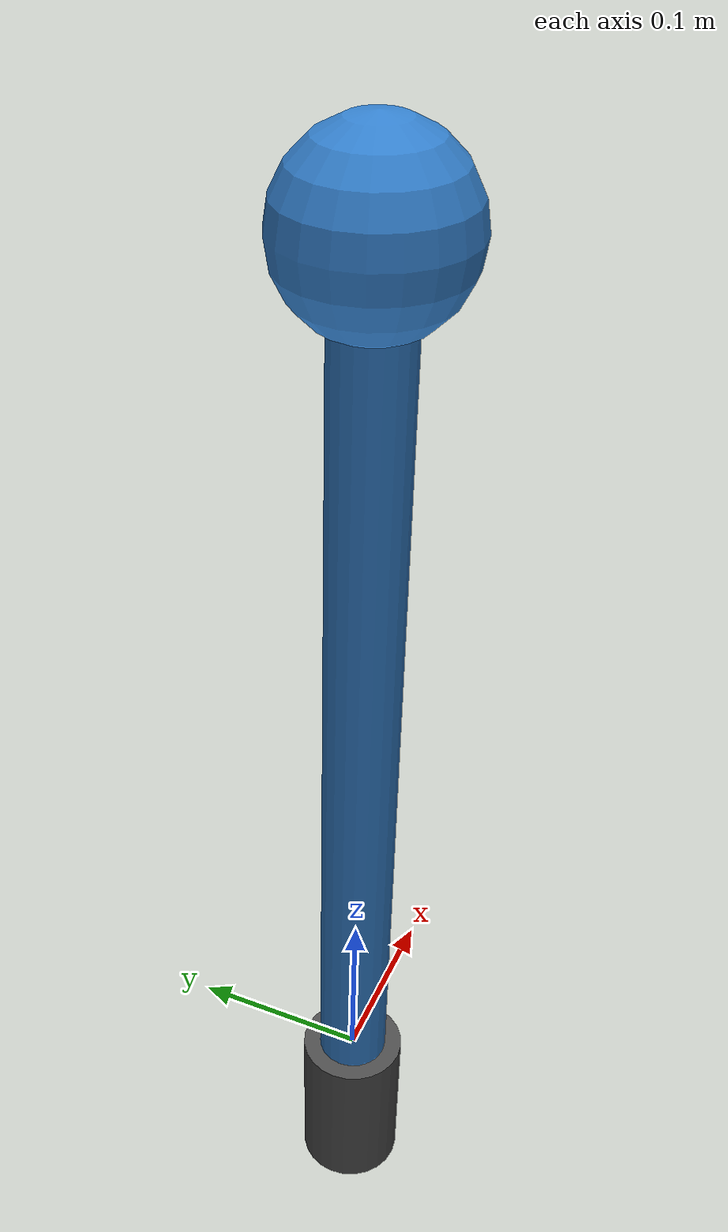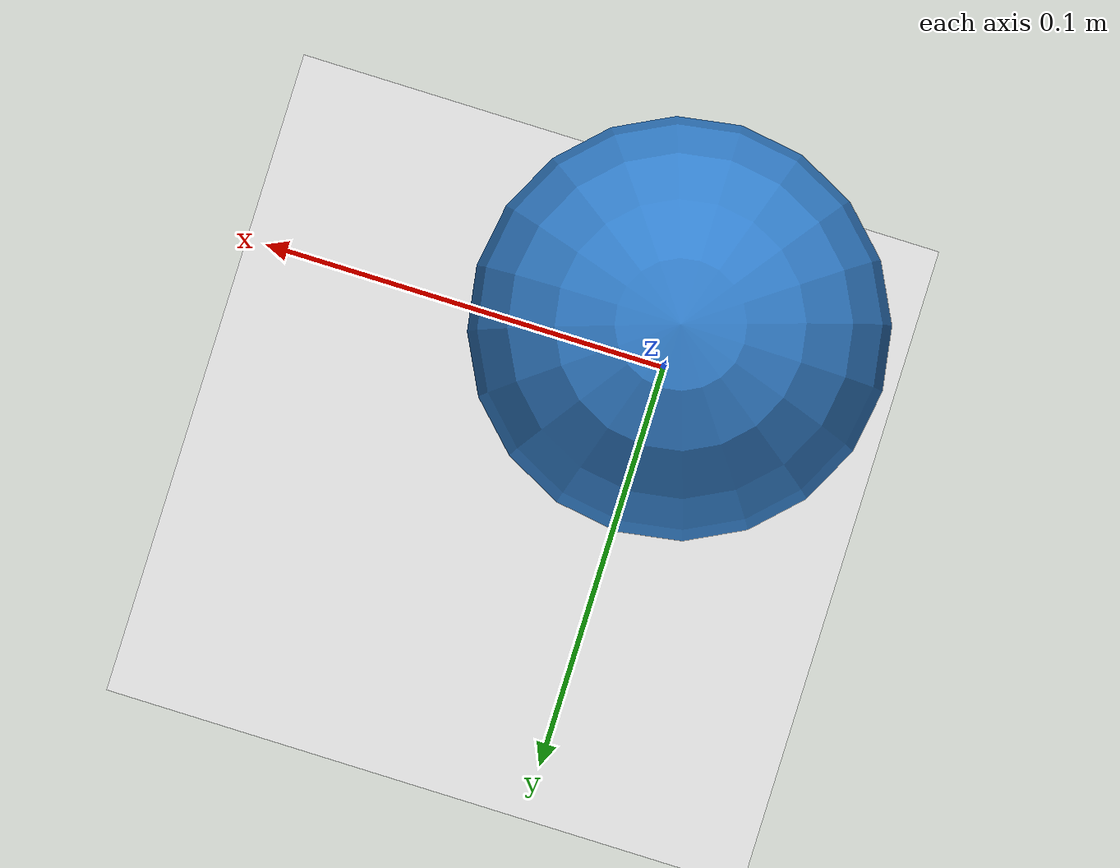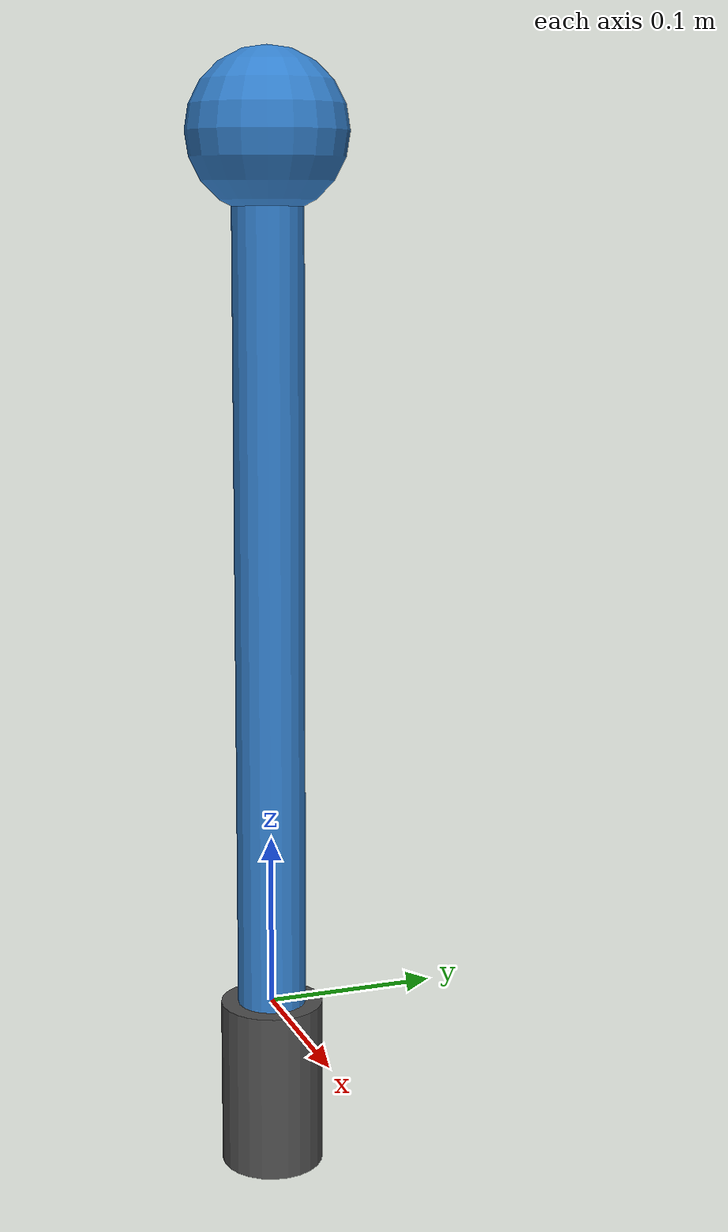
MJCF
<mujoco model="inverted_pendulum_pivot">
  <compiler angle="radian" inertiafromgeom="true"/>
  <option timestep="0.01" gravity="0 0 -9.81" integrator="RK4"/>

  <default>
    <joint damping="0.05" limited="false"/>
    <geom rgba="0.2 0.5 0.8 1" contype="0" conaffinity="0"/>
  </default>

  <worldbody>
    <light diffuse="0.6 0.6 0.6" pos="0 0 3" dir="0 0 -1"/>
    <geom name="floor" type="plane" size="1 1 0.1" rgba="0.9 0.9 0.9 1" pos="0 0 -0.6"/>

    <!-- Fixed pivot base (visual only, no dof) -->
    <body name="base" pos="0 0 0">
      <geom name="pivot_mount" type="cylinder" size="0.03 0.05" pos="0 0 -0.05" rgba="0.3 0.3 0.3 1"/>

      <!-- Pendulum arm: hinge about Y axis, theta measured from +Z (upright) -->
      <body name="pole" pos="0 0 0">
        <joint name="pivot" type="hinge" axis="0 1 0" pos="0 0 0" damping="0.05"/>
        <geom name="pole_geom" type="capsule" fromto="0 0 0 0 0 0.5" size="0.02" mass="0.2"/>
        <geom name="tip_mass" type="sphere" pos="0 0 0.5" size="0.045" mass="0.3"/>
      </body>
    </body>
  </worldbody>

  <actuator>
    <motor name="pivot_motor" joint="pivot" gear="1" ctrllimited="true" ctrlrange="-15 15"/>
  </actuator>

  <sensor>
    <jointpos name="theta_sensor" joint="pivot"/>
    <jointvel name="theta_dot_sensor" joint="pivot"/>
  </sensor>
</mujoco>
